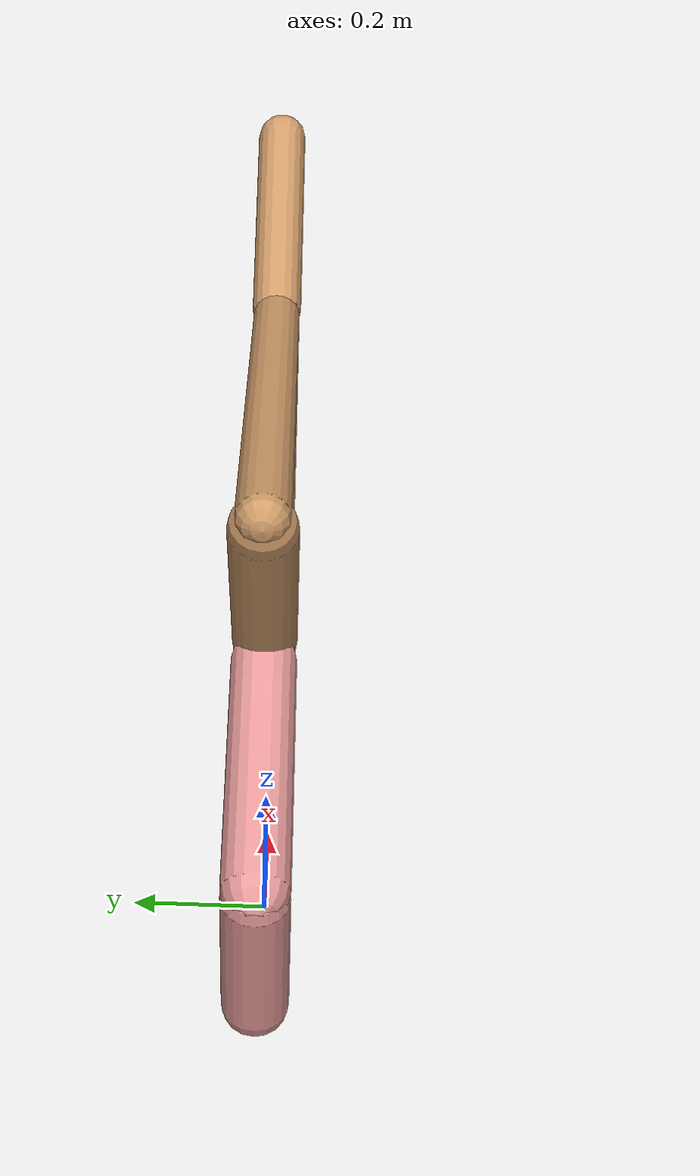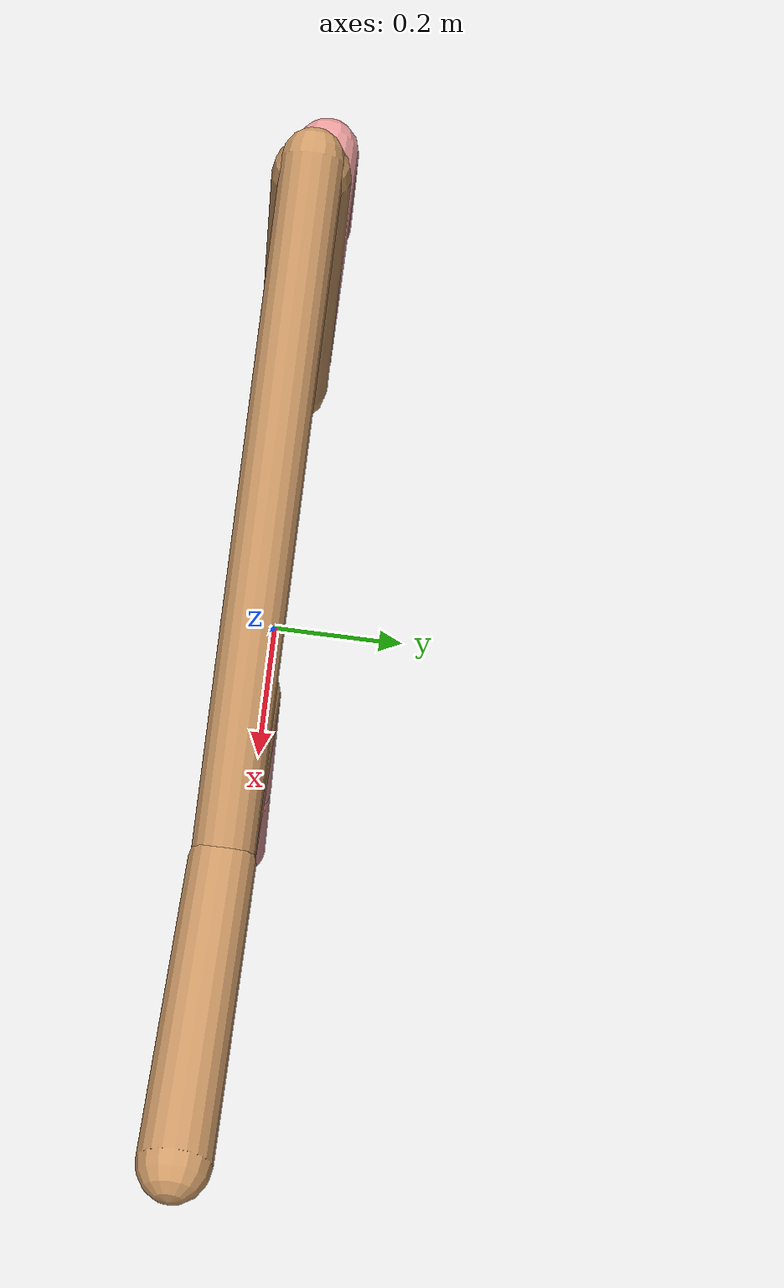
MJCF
<mujoco model="cheetah">
  <compiler angle="radian" coordinate="local" inertiafromgeom="true" settotalmass="14" />
  <default>
    <joint armature=".1" damping=".01" limited="true" solimplimit="0 .8 .03" solreflimit=".02 1" stiffness="8" />
    <geom conaffinity="0" condim="3" contype="1" friction="0.8 .1 .1" rgba="0.8 0.6 .4 1" solimp="0.0 0.8 0.01" solref="0.02 1" />
    <motor ctrllimited="true" ctrlrange="-1 1" />
  </default>
  <size nstack="300000" nuser_geom="1" />
  <option gravity="0 0 -9.81" timestep="0.01" />
  <worldbody>
    <body name="torso" pos="0.0 0.0 0.8856273120147756">
      <joint armature="0" axis="1 0 0" damping="0" limited="false" name="ignorex" pos="0 0 0" stiffness="0" type="slide" />
      <joint armature="0" axis="0 0 1" damping="0" limited="false" name="ignorez" pos="0 0 0" stiffness="0" type="slide" />
      <joint armature="0" axis="0 1 0" damping="0" limited="false" name="ignorey" pos="0 0 0" stiffness="0" type="hinge" />
      <geom fromto="-0.5 0.0 0.0 0.21856812873738835 0.0 0.0" name="torso" size="0.03216775339575053" type="capsule" />
      <geom axisangle="0 1 0 .87" name="head" pos="0.3185681287373884 0.0 0.1" size="0.03420109436959759 0.15" type="capsule" />

      <body name="bthigh" pos="-.5 0 0">
        <joint axis="0 1 0" damping="6" name="bthigh" pos="0 0 0" range="-.52 1.05" stiffness="240" type="hinge" />
        <geom axisangle="0 1 0 -3.8" name="bthigh" pos="0.10421941705325126 0.0 -0.13548524216922664" size="0.040459464402644904 0.15192035851125718" type="capsule" />
        <body name="bshin" pos="0.1684388341065025 0.0 -0.26097048433845327">
          <joint axis="0 1 0" damping="4.5" name="bshin" pos="0 0 0" range="-.785 .785" stiffness="180" type="hinge" />
          <geom axisangle="0 1 0 -2.03" name="bshin" pos="-0.14640319671441668 0.0 -0.07320159835720834" rgba="0.9 0.6 0.6 1" size="0.040459464402644904 0.15715899156336952" type="capsule" />
          <body name="bfoot" pos="-0.29280639342883336 0.0 -0.14640319671441668">
            <joint axis="0 1 0" damping="3" name="bfoot" pos="0 0 0" range="-.4 .785" stiffness="120" type="hinge" />
            <geom axisangle="0 1 0 -.27" name="bfoot" pos="0.03132556622560826 0.0 -0.10128599746280005" rgba="0.9 0.6 0.6 1" size="0.040459464402644904 0.09848630137971157" type="capsule" />
            <inertial mass="10" />
          </body>
        </body>
      </body>
      <body name="fthigh" pos="0.2185681287373884 0.0 0.0">
        <joint axis="0 1 0" damping="4.5" name="fthigh" pos="0 0 0" range="-1.5 0.8" stiffness="180" type="hinge" />
        <geom axisangle="0 1 0 .52" name="fthigh" pos="-0.08301232824407101 0.0 -0.14230684841840743" size="0.0322 0.15882472018615604" type="capsule" />
        <body name="fshin" pos="-0.16602465648814202 0.0 -0.28461369683681487">
          <joint axis="0 1 0" damping="3" name="fshin" pos="0 0 0" range="-1.2 1.1" stiffness="120" type="hinge" />
          <geom axisangle="0 1 0 -.6" name="fshin" pos="0.07705062970537456 0.0 -0.10668548728436478" rgba="0.9 0.6 0.6 1" size="0.0322 0.12658210781753787" type="capsule" />
          <body name="ffoot" pos="0.15410125941074912 0.0 -0.21337097456872955">
            <joint axis="0 1 0" damping="1.5" name="ffoot" pos="0 0 0" range="-3.1 -0.3" stiffness="60" type="hinge" />
            <geom axisangle="0 1 0 -.6" name="ffoot" pos="0.05234995446537411 0.0 -0.08143326250169308" rgba="0.9 0.6 0.6 1" size="0.0322 0.0835919579927137" type="capsule" />
            <inertial mass="10" />
          </body>
        </body>
      </body>
    </body>
  </worldbody>
  <actuator>
    <motor gear="120" joint="bthigh" name="bthigh" />
    <motor gear="90" joint="bshin" name="bshin" />
    <motor gear="60" joint="bfoot" name="bfoot" />
    <motor gear="120" joint="fthigh" name="fthigh" />
    <motor gear="60" joint="fshin" name="fshin" />
    <motor gear="30" joint="ffoot" name="ffoot" />
  </actuator>
</mujoco>
